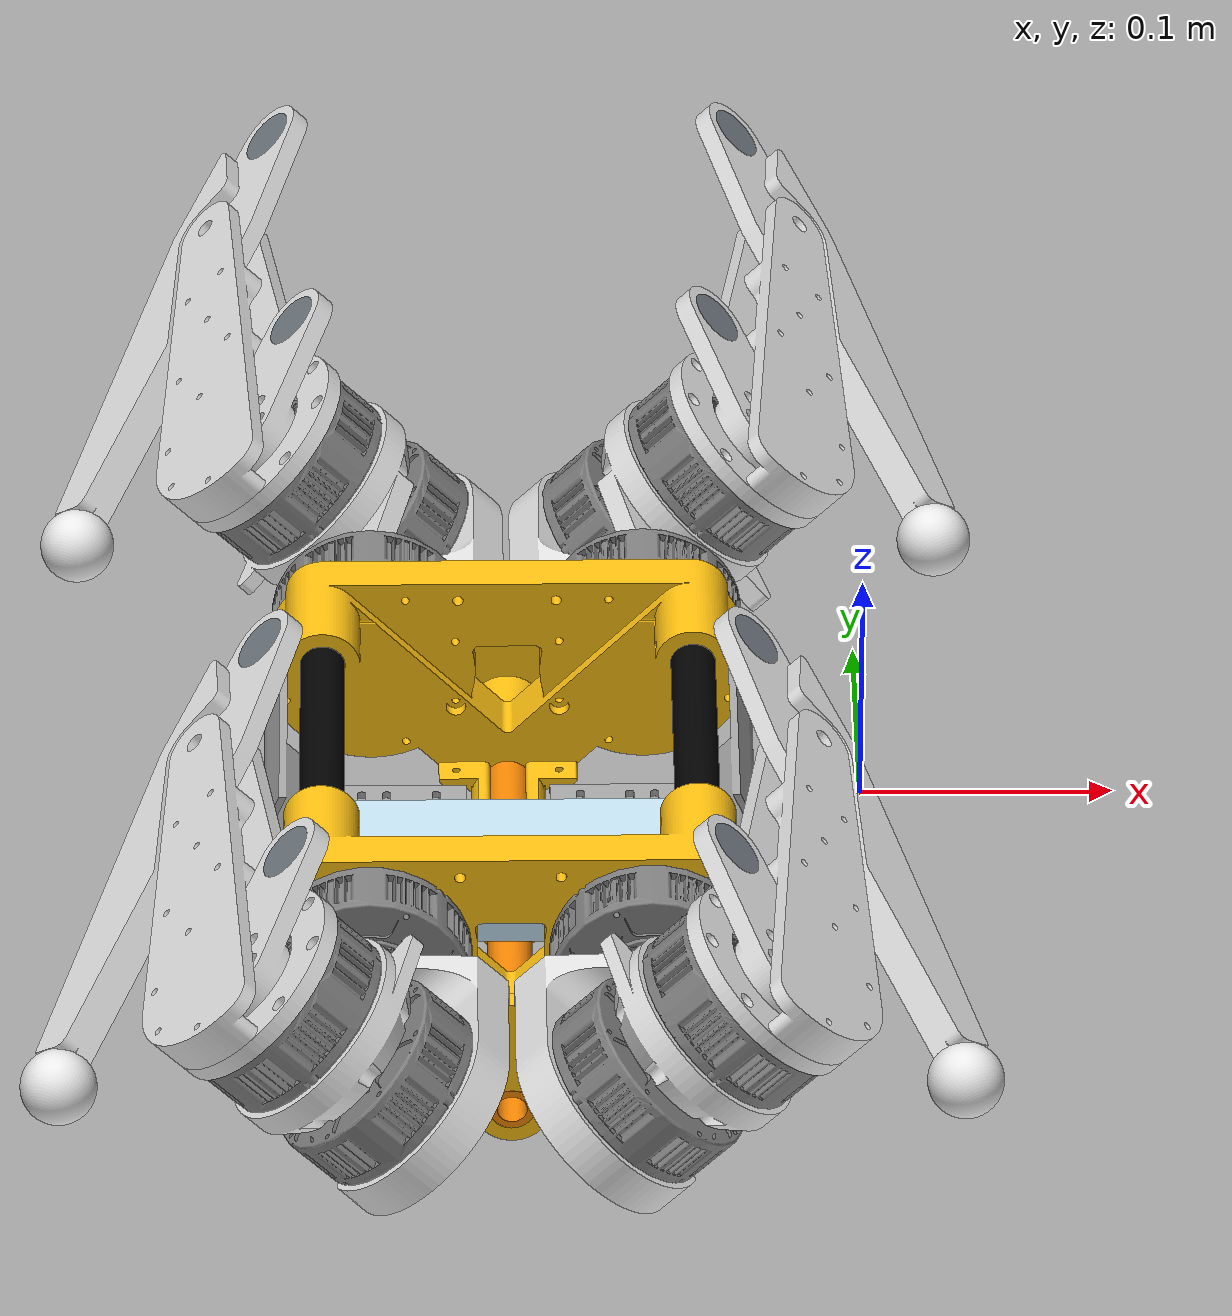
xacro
<?xml version="1.0" ?>
<robot name="quadro" xmlns:xacro="http://www.ros.org/wiki/xacro">
<xacro:arg name="sim_mode" default="false"/>

<xacro:include filename="$(find quadro)/description/materials.xacro" />
<xacro:if value="$(arg sim_mode)">
  <xacro:include filename="$(find quadro)/description/robot.gazebo" />
</xacro:if>

<xacro:unless value="$(arg sim_mode)">
  <xacro:include filename="$(find quadro)/description/ros2_control.xacro" />
</xacro:unless>

  <link name="back_plate">
    <inertial>
      <origin xyz="-0.139034 0.00733582 -0.013731" rpy="0 0 0"/>
      <mass value="2.59053"/>
      <inertia ixx="0.0255846" ixy="-4.15339e-05" ixz="-1.35405e-12" iyy="0.00872593" iyz="-0.000207516" izz="0.0313278"/>
    </inertial>
    <!-- Part back_stop -->
    <visual>
      <origin xyz="-0.139034 -0.0331652 -0.058441" rpy="0 -0 0"/>
      <geometry>
        <mesh filename="file://$(find quadro)/description/assets/back_stop.stl"/>
      </geometry>
      <material name="back_stop_material">
        <color rgba="1 0.756863 0.054902 1"/>
      </material>
    </visual>
    <collision>
      <origin xyz="-0.139034 -0.0331652 -0.058441" rpy="0 -0 0"/>
      <geometry>
        <mesh filename="file://$(find quadro)/description/assets/back_stop.stl"/>
      </geometry>
    </collision>
    <!-- Part side_pipe -->
    <visual>
      <origin xyz="-0.286981 0.105935 -0.058441" rpy="0 -0 0"/>
      <geometry>
        <mesh filename="file://$(find quadro)/description/assets/side_pipe.stl"/>
      </geometry>
      <material name="side_pipe_material">
        <color rgba="0 0 0 1"/>
      </material>
    </visual>
    <collision>
      <origin xyz="-0.286981 0.105935 -0.058441" rpy="0 -0 0"/>
      <geometry>
        <mesh filename="file://$(find quadro)/description/assets/side_pipe.stl"/>
      </geometry>
    </collision>
    <!-- Part side_cover -->
    <visual>
      <origin xyz="-0.139034 -0.0810652 -0.058441" rpy="2.4928e-28 -8.23912e-18 -3.14159"/>
      <geometry>
        <mesh filename="file://$(find quadro)/description/assets/side_cover.stl"/>
      </geometry>
      <material name="side_cover_material">
        <color rgba="0.647059 0.647059 0.647059 1"/>
      </material>
    </visual>
    <collision>
      <origin xyz="-0.139034 -0.0810652 -0.058441" rpy="2.4928e-28 -8.23912e-18 -3.14159"/>
      <geometry>
        <mesh filename="file://$(find quadro)/description/assets/side_cover.stl"/>
      </geometry>
    </collision>
    <!-- Part back_plate -->
    <visual>
      <origin xyz="-0.139034 0.105935 -0.058441" rpy="-3.9443e-31 6.56859e-46 -1.79651e-46"/>
      <geometry>
        <mesh filename="file://$(find quadro)/description/assets/back_plate.stl"/>
      </geometry>
      <material name="back_plate_material">
        <color rgba="1 0.756863 0.054902 1"/>
      </material>
    </visual>
    <collision>
      <origin xyz="-0.139034 0.105935 -0.058441" rpy="-3.9443e-31 6.56859e-46 -1.79651e-46"/>
      <geometry>
        <mesh filename="file://$(find quadro)/description/assets/back_plate.stl"/>
      </geometry>
    </collision>
    <!-- Part battery -->
    <visual>
      <origin xyz="-0.0725337 -0.0315652 -0.029441" rpy="0 -6.12323e-17 1.5708"/>
      <geometry>
        <mesh filename="file://$(find quadro)/description/assets/battery.stl"/>
      </geometry>
      <material name="battery_material">
        <color rgba="0.768627 0.886275 0.952941 1"/>
      </material>
    </visual>
    <collision>
      <origin xyz="-0.0725337 -0.0315652 -0.029441" rpy="0 -6.12323e-17 1.5708"/>
      <geometry>
        <mesh filename="file://$(find quadro)/description/assets/battery.stl"/>
      </geometry>
    </collision>
    <!-- Part motor -->
    <visual>
      <origin xyz="-0.194034 -0.0920652 -0.00844105" rpy="3.14159 5.95406e-36 -1.5708"/>
      <geometry>
        <mesh filename="file://$(find quadro)/description/assets/motor.stl"/>
      </geometry>
      <material name="motor_material">
        <color rgba="0.498039 0.498039 0.498039 1"/>
      </material>
    </visual>
    <collision>
      <origin xyz="-0.194034 -0.0920652 -0.00844105" rpy="3.14159 5.95406e-36 -1.5708"/>
      <geometry>
        <mesh filename="file://$(find quadro)/description/assets/motor.stl"/>
      </geometry>
    </collision>
    <!-- Part side_cover_2 -->
    <visual>
      <origin xyz="-0.139034 0.105935 -0.058441" rpy="0 -8.23912e-18 2.00179e-32"/>
      <geometry>
        <mesh filename="file://$(find quadro)/description/assets/side_cover.stl"/>
      </geometry>
      <material name="side_cover_2_material">
        <color rgba="0.647059 0.647059 0.647059 1"/>
      </material>
    </visual>
    <collision>
      <origin xyz="-0.139034 0.105935 -0.058441" rpy="0 -8.23912e-18 2.00179e-32"/>
      <geometry>
        <mesh filename="file://$(find quadro)/description/assets/side_cover.stl"/>
      </geometry>
    </collision>
    <!-- Part motor_2 -->
    <visual>
      <origin xyz="-0.194034 0.116935 -0.00844105" rpy="-3.14159 7.88861e-31 1.5708"/>
      <geometry>
        <mesh filename="file://$(find quadro)/description/assets/motor.stl"/>
      </geometry>
      <material name="motor_2_material">
        <color rgba="0.498039 0.498039 0.498039 1"/>
      </material>
    </visual>
    <collision>
      <origin xyz="-0.194034 0.116935 -0.00844105" rpy="-3.14159 7.88861e-31 1.5708"/>
      <geometry>
        <mesh filename="file://$(find quadro)/description/assets/motor.stl"/>
      </geometry>
    </collision>
    <!-- Part motor_3 -->
    <visual>
      <origin xyz="-0.0840337 -0.0920652 -0.00844105" rpy="3.14159 5.95406e-36 -1.5708"/>
      <geometry>
        <mesh filename="file://$(find quadro)/description/assets/motor.stl"/>
      </geometry>
      <material name="motor_3_material">
        <color rgba="0.498039 0.498039 0.498039 1"/>
      </material>
    </visual>
    <collision>
      <origin xyz="-0.0840337 -0.0920652 -0.00844105" rpy="3.14159 5.95406e-36 -1.5708"/>
      <geometry>
        <mesh filename="file://$(find quadro)/description/assets/motor.stl"/>
      </geometry>
    </collision>
    <!-- Part bot_pipe_half -->
    <visual>
      <origin xyz="-0.139034 0.439935 -0.058441" rpy="3.14159 -0 0"/>
      <geometry>
        <mesh filename="file://$(find quadro)/description/assets/bot_pipe_half.stl"/>
      </geometry>
      <material name="bot_pipe_half_material">
        <color rgba="0.972549 0.529412 0.00392157 1"/>
      </material>
    </visual>
    <collision>
      <origin xyz="-0.139034 0.439935 -0.058441" rpy="3.14159 -0 0"/>
      <geometry>
        <mesh filename="file://$(find quadro)/description/assets/bot_pipe_half.stl"/>
      </geometry>
    </collision>
    <!-- Part side_pipe_2 -->
    <visual>
      <origin xyz="-0.139034 -0.0810652 0.095559" rpy="3.14159 -0 0"/>
      <geometry>
        <mesh filename="file://$(find quadro)/description/assets/side_pipe.stl"/>
      </geometry>
      <material name="side_pipe_2_material">
        <color rgba="0 0 0 1"/>
      </material>
    </visual>
    <collision>
      <origin xyz="-0.139034 -0.0810652 0.095559" rpy="3.14159 -0 0"/>
      <geometry>
        <mesh filename="file://$(find quadro)/description/assets/side_pipe.stl"/>
      </geometry>
    </collision>
    <!-- Part motor_4 -->
    <visual>
      <origin xyz="-0.0840337 0.116935 -0.00844105" rpy="-3.14159 7.88861e-31 1.5708"/>
      <geometry>
        <mesh filename="file://$(find quadro)/description/assets/motor.stl"/>
      </geometry>
      <material name="motor_4_material">
        <color rgba="0.498039 0.498039 0.498039 1"/>
      </material>
    </visual>
    <collision>
      <origin xyz="-0.0840337 0.116935 -0.00844105" rpy="-3.14159 7.88861e-31 1.5708"/>
      <geometry>
        <mesh filename="file://$(find quadro)/description/assets/motor.stl"/>
      </geometry>
    </collision>
    <!-- Part back_stop_2 -->
    <visual>
      <origin xyz="-0.139034 0.0580348 -0.058441" rpy="0 -0 -3.14159"/>
      <geometry>
        <mesh filename="file://$(find quadro)/description/assets/back_stop.stl"/>
      </geometry>
      <material name="back_stop_2_material">
        <color rgba="1 0.756863 0.054902 1"/>
      </material>
    </visual>
    <collision>
      <origin xyz="-0.139034 0.0580348 -0.058441" rpy="0 -0 -3.14159"/>
      <geometry>
        <mesh filename="file://$(find quadro)/description/assets/back_stop.stl"/>
      </geometry>
    </collision>
    <!-- Part back_plate_2 -->
    <visual>
      <origin xyz="-0.139034 -0.0810652 -0.058441" rpy="0 -0 3.14159"/>
      <geometry>
        <mesh filename="file://$(find quadro)/description/assets/back_plate.stl"/>
      </geometry>
      <material name="back_plate_2_material">
        <color rgba="1 0.756863 0.054902 1"/>
      </material>
    </visual>
    <collision>
      <origin xyz="-0.139034 -0.0810652 -0.058441" rpy="0 -0 3.14159"/>
      <geometry>
        <mesh filename="file://$(find quadro)/description/assets/back_plate.stl"/>
      </geometry>
    </collision>
    <!-- Part bot_pipe_half_2 -->
    <visual>
      <origin xyz="-0.139034 -0.415065 -0.058441" rpy="0 -0 0"/>
      <geometry>
        <mesh filename="file://$(find quadro)/description/assets/bot_pipe_half.stl"/>
      </geometry>
      <material name="bot_pipe_half_2_material">
        <color rgba="0.972549 0.529412 0.00392157 1"/>
      </material>
    </visual>
    <collision>
      <origin xyz="-0.139034 -0.415065 -0.058441" rpy="0 -0 0"/>
      <geometry>
        <mesh filename="file://$(find quadro)/description/assets/bot_pipe_half.stl"/>
      </geometry>
    </collision>
    <!-- Part mid_clamp -->
    <visual>
      <origin xyz="-0.139034 0.245535 -0.058441" rpy="0 -0 0"/>
      <geometry>
        <mesh filename="file://$(find quadro)/description/assets/mid_clamp.stl"/>
      </geometry>
      <material name="mid_clamp_material">
        <color rgba="1 0.756863 0.054902 1"/>
      </material>
    </visual>
    <collision>
      <origin xyz="-0.139034 0.245535 -0.058441" rpy="0 -0 0"/>
      <geometry>
        <mesh filename="file://$(find quadro)/description/assets/mid_clamp.stl"/>
      </geometry>
    </collision>
    <!-- Part battery_2 -->
    <visual>
      <origin xyz="-0.205534 -0.0315652 -0.029441" rpy="3.14159 -0 1.5708"/>
      <geometry>
        <mesh filename="file://$(find quadro)/description/assets/battery.stl"/>
      </geometry>
      <material name="battery_2_material">
        <color rgba="0.768627 0.886275 0.952941 1"/>
      </material>
    </visual>
    <collision>
      <origin xyz="-0.205534 -0.0315652 -0.029441" rpy="3.14159 -0 1.5708"/>
      <geometry>
        <mesh filename="file://$(find quadro)/description/assets/battery.stl"/>
      </geometry>
    </collision>
  </link>
  <!-- Link shaft -->
  <link name="shaft">
    <inertial>
      <origin xyz="-0.00474046 0.00407901 -0.0612986" rpy="0 0 0"/>
      <mass value="0.452938"/>
      <inertia ixx="0.000550761" ixy="-6.00381e-05" ixz="-1.13918e-05" iyy="0.00055728" iyz="1.18589e-05" izz="0.000239291"/>
    </inertial>
    <!-- Part lin_1_support_br -->
    <visual>
      <origin xyz="-0.019799 0.019799 -0.0735" rpy="0.785398 -1.5708 0"/>
      <geometry>
        <mesh filename="file://$(find quadro)/description/assets/lin_1_support_br.stl"/>
      </geometry>
      <material name="lin_1_support_br_material">
        <color rgba="0.901961 0.901961 0.901961 1"/>
      </material>
    </visual>
    <collision>
      <origin xyz="-0.019799 0.019799 -0.0735" rpy="0.785398 -1.5708 0"/>
      <geometry>
        <mesh filename="file://$(find quadro)/description/assets/lin_1_support_br.stl"/>
      </geometry>
    </collision>
    <!-- Part motor_5 -->
    <visual>
      <origin xyz="-0.0120208 0.0120208 -0.0735" rpy="-1.5708 4.94218e-17 -0.785398"/>
      <geometry>
        <mesh filename="file://$(find quadro)/description/assets/motor.stl"/>
      </geometry>
      <material name="motor_5_material">
        <color rgba="0.498039 0.498039 0.498039 1"/>
      </material>
    </visual>
    <collision>
      <origin xyz="-0.0120208 0.0120208 -0.0735" rpy="-1.5708 4.94218e-17 -0.785398"/>
      <geometry>
        <mesh filename="file://$(find quadro)/description/assets/motor.stl"/>
      </geometry>
    </collision>
    <!-- Part shaft -->
    <visual>
      <origin xyz="0 0 0.01" rpy="1.5708 1.5708 0"/>
      <geometry>
        <mesh filename="file://$(find quadro)/description/assets/shaft.stl"/>
      </geometry>
      <material name="shaft_material">
        <color rgba="0.498039 0.498039 0.498039 1"/>
      </material>
    </visual>
    <collision>
      <origin xyz="0 0 0.01" rpy="1.5708 1.5708 0"/>
      <geometry>
        <mesh filename="file://$(find quadro)/description/assets/shaft.stl"/>
      </geometry>
    </collision>
  </link>
  <!-- Link shaft_2 -->
  <link name="shaft_2">
    <inertial>
      <origin xyz="0.00931177 -0.00187407 -0.0491985" rpy="0 0 0"/>
      <mass value="0.524841"/>
      <inertia ixx="0.000439148" ixy="6.14395e-05" ixz="0.000140002" iyy="0.000912333" iyz="-3.78102e-05" izz="0.000883052"/>
    </inertial>
    <!-- Part bot_r -->
    <visual>
      <origin xyz="5.55112e-16 3.60822e-16 0.1275" rpy="-1.5708 1.35308e-15 -0.0872665"/>
      <geometry>
        <mesh filename="file://$(find quadro)/description/assets/bot_r.stl"/>
      </geometry>
      <material name="bot_r_material">
        <color rgba="0.901961 0.901961 0.901961 1"/>
      </material>
    </visual>
    <collision>
      <origin xyz="5.55112e-16 3.60822e-16 0.1275" rpy="-1.5708 1.35308e-15 -0.0872665"/>
      <geometry>
        <mesh filename="file://$(find quadro)/description/assets/bot_r.stl"/>
      </geometry>
    </collision>
    <!-- Part top_r -->
    <visual>
      <origin xyz="4.71845e-16 3.88578e-16 0.1275" rpy="-1.5708 1.20043e-15 -0.0872665"/>
      <geometry>
        <mesh filename="file://$(find quadro)/description/assets/top_r.stl"/>
      </geometry>
      <material name="top_r_material">
        <color rgba="0.901961 0.901961 0.901961 1"/>
      </material>
    </visual>
    <collision>
      <origin xyz="4.71845e-16 3.88578e-16 0.1275" rpy="-1.5708 1.20043e-15 -0.0872665"/>
      <geometry>
        <mesh filename="file://$(find quadro)/description/assets/top_r.stl"/>
      </geometry>
    </collision>
    <!-- Part shaft_2 -->
    <visual>
      <origin xyz="2.77556e-17 2.77556e-17 0.01" rpy="1.5708 1.5708 0"/>
      <geometry>
        <mesh filename="file://$(find quadro)/description/assets/shaft.stl"/>
      </geometry>
      <material name="shaft_2_material">
        <color rgba="0.498039 0.498039 0.498039 1"/>
      </material>
    </visual>
    <collision>
      <origin xyz="2.77556e-17 2.77556e-17 0.01" rpy="1.5708 1.5708 0"/>
      <geometry>
        <mesh filename="file://$(find quadro)/description/assets/shaft.stl"/>
      </geometry>
    </collision>
    <!-- Part lin_2_br -->
    <visual>
      <origin xyz="8.32667e-17 0 0.0305" rpy="-1.5708 -2.33147e-15 0.698132"/>
      <geometry>
        <mesh filename="file://$(find quadro)/description/assets/lin_2_br.stl"/>
      </geometry>
      <material name="lin_2_br_material">
        <color rgba="0.901961 0.901961 0.901961 1"/>
      </material>
    </visual>
    <collision>
      <origin xyz="8.32667e-17 0 0.0305" rpy="-1.5708 -2.33147e-15 0.698132"/>
      <geometry>
        <mesh filename="file://$(find quadro)/description/assets/lin_2_br.stl"/>
      </geometry>
    </collision>
    <!-- Part motor_6 -->
    <visual>
      <origin xyz="2.77556e-17 -2.77556e-17 -0.0395" rpy="0.872665 1.5708 0"/>
      <geometry>
        <mesh filename="file://$(find quadro)/description/assets/motor.stl"/>
      </geometry>
      <material name="motor_6_material">
        <color rgba="0.498039 0.498039 0.498039 1"/>
      </material>
    </visual>
    <collision>
      <origin xyz="2.77556e-17 -2.77556e-17 -0.0395" rpy="0.872665 1.5708 0"/>
      <geometry>
        <mesh filename="file://$(find quadro)/description/assets/motor.stl"/>
      </geometry>
    </collision>
  </link>
  <!-- Link shaft_3 -->
  <link name="shaft_3">
    <inertial>
      <origin xyz="0.00823991 0.00823991 -0.0152617" rpy="0 0 0"/>
      <mass value="0.0992632"/>
      <inertia ixx="3.95043e-05" ixy="-2.3154e-05" ixz="1.04189e-05" iyy="3.95043e-05" iyz="1.04189e-05" izz="6.07656e-05"/>
    </inertial>
    <!-- Part bearing -->
    <visual>
      <origin xyz="0.0388909 0.0388909 -0.032" rpy="-1.5708 5.10703e-15 -0.785398"/>
      <geometry>
        <mesh filename="file://$(find quadro)/description/assets/bearing.stl"/>
      </geometry>
      <material name="bearing_material">
        <color rgba="0.439216 0.47451 0.501961 1"/>
      </material>
    </visual>
    <collision>
      <origin xyz="0.0388909 0.0388909 -0.032" rpy="-1.5708 5.10703e-15 -0.785398"/>
      <geometry>
        <mesh filename="file://$(find quadro)/description/assets/bearing.stl"/>
      </geometry>
    </collision>
    <!-- Part shaft_3 -->
    <visual>
      <origin xyz="0 1.38778e-17 0.01" rpy="1.5708 1.5708 0"/>
      <geometry>
        <mesh filename="file://$(find quadro)/description/assets/shaft.stl"/>
      </geometry>
      <material name="shaft_3_material">
        <color rgba="0.498039 0.498039 0.498039 1"/>
      </material>
    </visual>
    <collision>
      <origin xyz="0 1.38778e-17 0.01" rpy="1.5708 1.5708 0"/>
      <geometry>
        <mesh filename="file://$(find quadro)/description/assets/shaft.stl"/>
      </geometry>
    </collision>
    <!-- Part mid_r -->
    <visual>
      <origin xyz="-1.66533e-16 -4.16334e-17 0.186" rpy="-1.5708 4.996e-15 -0.785398"/>
      <geometry>
        <mesh filename="file://$(find quadro)/description/assets/mid_r.stl"/>
      </geometry>
      <material name="mid_r_material">
        <color rgba="0.901961 0.901961 0.901961 1"/>
      </material>
    </visual>
    <collision>
      <origin xyz="-1.66533e-16 -4.16334e-17 0.186" rpy="-1.5708 4.996e-15 -0.785398"/>
      <geometry>
        <mesh filename="file://$(find quadro)/description/assets/mid_r.stl"/>
      </geometry>
    </collision>
  </link>
  <!-- Joint from shaft_2 to shaft_3 -->
  <joint name="br_m3_s3" type="revolute">
    <origin xyz="2.77556e-17 -2.77556e-17 -0.0495" rpy="-6.10623e-16 8.46545e-16 -0.226893"/>
    <parent link="shaft_2"/>
    <child link="shaft_3"/>
    <axis xyz="0 0 1"/>
    <limit effort="10" velocity="12" lower="-3.14" upper="3.14"/>
    <joint_properties friction="0.5"/>
    <mimic joint="br_l4_l3" multiplier="1.0"/>
  </joint>
  <!-- Link l4_r -->
  <link name="l4_r">
    <inertial>
      <origin xyz="0.000903864 -0.036899 -0.00535524" rpy="0 0 0"/>
      <mass value="0.0940232"/>
      <inertia ixx="0.000523053" ixy="-1.96406e-06" ixz="4.23983e-07" iyy="8.81625e-06" iyz="-3.90493e-06" izz="0.000528442"/>
    </inertial>
    <!-- Part l4_r -->
    <visual>
      <origin xyz="-0.16 0.002 0.192" rpy="-1.5708 -0 -2.77556e-17"/>
      <geometry>
        <mesh filename="file://$(find quadro)/description/assets/l4_r.stl"/>
      </geometry>
      <material name="l4_r_material">
        <color rgba="0.901961 0.901961 0.901961 1"/>
      </material>
    </visual>
    <collision>
      <origin xyz="-0.16 0.002 0.192" rpy="-1.5708 -0 -2.77556e-17"/>
      <geometry>
        <mesh filename="file://$(find quadro)/description/assets/l4_r.stl"/>
      </geometry>
    </collision>
    <!-- Part feet -->
    <visual>
      <origin xyz="0.200014 0.04 -0.039" rpy="-1.5708 -0 -2.44249e-15"/>
      <geometry>
        <mesh filename="file://$(find quadro)/description/assets/feet.stl"/>
      </geometry>
      <material name="feet_material">
        <color rgba="0.917647 0.917647 0.917647 1"/>
      </material>
    </visual>
    <collision>
      <origin xyz="0.200014 0.04 -0.039" rpy="-1.5708 -0 -2.44249e-15"/>
      <geometry>
        <mesh filename="file://$(find quadro)/description/assets/feet.stl"/>
      </geometry>
    </collision>
    <!-- Part bearing_2 -->
    <visual>
      <origin xyz="5.55112e-17 0.055 -0.008" rpy="-1.5708 -1.11022e-16 2.77556e-17"/>
      <geometry>
        <mesh filename="file://$(find quadro)/description/assets/bearing.stl"/>
      </geometry>
      <material name="bearing_2_material">
        <color rgba="0.439216 0.47451 0.501961 1"/>
      </material>
    </visual>
    <collision>
      <origin xyz="5.55112e-17 0.055 -0.008" rpy="-1.5708 -1.11022e-16 2.77556e-17"/>
      <geometry>
        <mesh filename="file://$(find quadro)/description/assets/bearing.stl"/>
      </geometry>
    </collision>
    <!-- Part bearing_3 -->
    <visual>
      <origin xyz="1.11022e-16 2.77556e-17 -0.008" rpy="-1.5708 -5.55112e-17 0"/>
      <geometry>
        <mesh filename="file://$(find quadro)/description/assets/bearing.stl"/>
      </geometry>
      <material name="bearing_3_material">
        <color rgba="0.439216 0.47451 0.501961 1"/>
      </material>
    </visual>
    <collision>
      <origin xyz="1.11022e-16 2.77556e-17 -0.008" rpy="-1.5708 -5.55112e-17 0"/>
      <geometry>
        <mesh filename="file://$(find quadro)/description/assets/bearing.stl"/>
      </geometry>
    </collision>
  </link>
  <!-- Frame br_foot (dummy link + fixed joint) -->
  <link name="br_foot">
    <origin xyz="0 0 0" rpy="0 -0 0"/>
    <inertial>
      <origin xyz="0 0 0" rpy="0 0 0"/>
      <mass value="1e-9"/>
      <inertia ixx="0" ixy="0" ixz="0" iyy="0" iyz="0" izz="0"/>
    </inertial>
  </link>
  <joint name="br_foot_frame" type="fixed">
    <origin xyz="1.66533e-16 -0.165803 -0.004" rpy="-1.5708 -0 -2.44249e-15"/>
    <parent link="l4_r"/>
    <child link="br_foot"/>
    <axis xyz="0 0 0"/>
  </joint>
  <!-- Joint from shaft_2 to l4_r -->
  <joint name="br_l4_l3" type="revolute">
    <origin xyz="0.159217 -0.0159373 -0.0735" rpy="-1.72085e-15 4.38538e-15 -1.01229"/>
    <parent link="shaft_2"/>
    <child link="l4_r"/>
    <axis xyz="0 0 1"/>
    <limit effort="10" velocity="12" lower="-3.14" upper="3.14"/>
    <joint_properties friction="0.5"/>
  </joint>
  <!-- Joint from shaft to shaft_2 -->
  <joint name="br_m2_s2" type="revolute">
    <origin xyz="-0.00494975 0.00494975 -0.0735" rpy="-2.35619 1.5708 0"/>
    <parent link="shaft"/>
    <child link="shaft_2"/>
    <axis xyz="0 0 1"/>
    <limit effort="10" velocity="12" lower="-3.14" upper="3.14"/>
    <joint_properties friction="0.5"/>
  </joint>
  <!-- Joint from back_plate to shaft -->
  <joint name="br_m1_s1" type="revolute">
    <origin xyz="-0.194034 0.126935 -0.00844105" rpy="-1.5708 -8.11125e-15 3.14159"/>
    <parent link="back_plate"/>
    <child link="shaft"/>
    <axis xyz="0 0 1"/>
    <limit effort="10" velocity="12" lower="-3.14" upper="3.14"/>
    <joint_properties friction="0.5"/>
  </joint>
  <!-- Link shaft_4 -->
  <link name="shaft_4">
    <inertial>
      <origin xyz="0.00473706 0.0040862 -0.0608763" rpy="0 0 0"/>
      <mass value="0.453012"/>
      <inertia ixx="0.000546146" ixy="6.01031e-05" ixz="1.17627e-05" iyy="0.000552555" iyz="1.15907e-05" izz="0.000239462"/>
    </inertial>
    <!-- Part shaft_4 -->
    <visual>
      <origin xyz="0 1.73472e-18 0.01" rpy="1.5708 1.5708 0"/>
      <geometry>
        <mesh filename="file://$(find quadro)/description/assets/shaft.stl"/>
      </geometry>
      <material name="shaft_4_material">
        <color rgba="0.498039 0.498039 0.498039 1"/>
      </material>
    </visual>
    <collision>
      <origin xyz="0 1.73472e-18 0.01" rpy="1.5708 1.5708 0"/>
      <geometry>
        <mesh filename="file://$(find quadro)/description/assets/shaft.stl"/>
      </geometry>
    </collision>
    <!-- Part motor_7 -->
    <visual>
      <origin xyz="0.0120208 0.0120208 -0.0735" rpy="1.5708 -1.61276e-15 -2.35619"/>
      <geometry>
        <mesh filename="file://$(find quadro)/description/assets/motor.stl"/>
      </geometry>
      <material name="motor_7_material">
        <color rgba="0.498039 0.498039 0.498039 1"/>
      </material>
    </visual>
    <collision>
      <origin xyz="0.0120208 0.0120208 -0.0735" rpy="1.5708 -1.61276e-15 -2.35619"/>
      <geometry>
        <mesh filename="file://$(find quadro)/description/assets/motor.stl"/>
      </geometry>
    </collision>
    <!-- Part lin_1_support_bl -->
    <visual>
      <origin xyz="0.0685894 0.0685894 -0.0735" rpy="2.35619 -1.5708 0"/>
      <geometry>
        <mesh filename="file://$(find quadro)/description/assets/lin_1_support_bl.stl"/>
      </geometry>
      <material name="lin_1_support_bl_material">
        <color rgba="0.901961 0.901961 0.901961 1"/>
      </material>
    </visual>
    <collision>
      <origin xyz="0.0685894 0.0685894 -0.0735" rpy="2.35619 -1.5708 0"/>
      <geometry>
        <mesh filename="file://$(find quadro)/description/assets/lin_1_support_bl.stl"/>
      </geometry>
    </collision>
  </link>
  <!-- Link shaft_5 -->
  <link name="shaft_5">
    <inertial>
      <origin xyz="0.00679431 0.00633758 -0.0491985" rpy="0 0 0"/>
      <mass value="0.524841"/>
      <inertia ixx="0.000610231" ixy="-0.000236595" ixz="0.000101861" iyy="0.000743295" iyz="0.00010283" izz="0.000885096"/>
    </inertial>
    <!-- Part lin_2_bl -->
    <visual>
      <origin xyz="0 -6.93889e-18 -0.0195" rpy="1.5708 2.22045e-16 -0.174533"/>
      <geometry>
        <mesh filename="file://$(find quadro)/description/assets/lin_2_bl.stl"/>
      </geometry>
      <material name="lin_2_bl_material">
        <color rgba="0.901961 0.901961 0.901961 1"/>
      </material>
    </visual>
    <collision>
      <origin xyz="0 -6.93889e-18 -0.0195" rpy="1.5708 2.22045e-16 -0.174533"/>
      <geometry>
        <mesh filename="file://$(find quadro)/description/assets/lin_2_bl.stl"/>
      </geometry>
    </collision>
    <!-- Part top_l -->
    <visual>
      <origin xyz="5.27356e-16 -9.71445e-17 -0.0725" rpy="1.5708 -1.0443e-14 0.610865"/>
      <geometry>
        <mesh filename="file://$(find quadro)/description/assets/top_l.stl"/>
      </geometry>
      <material name="top_l_material">
        <color rgba="0.901961 0.901961 0.901961 1"/>
      </material>
    </visual>
    <collision>
      <origin xyz="5.27356e-16 -9.71445e-17 -0.0725" rpy="1.5708 -1.0443e-14 0.610865"/>
      <geometry>
        <mesh filename="file://$(find quadro)/description/assets/top_l.stl"/>
      </geometry>
    </collision>
    <!-- Part motor_8 -->
    <visual>
      <origin xyz="5.55112e-17 -6.93889e-18 -0.0395" rpy="-1.39626 1.5708 0"/>
      <geometry>
        <mesh filename="file://$(find quadro)/description/assets/motor.stl"/>
      </geometry>
      <material name="motor_8_material">
        <color rgba="0.498039 0.498039 0.498039 1"/>
      </material>
    </visual>
    <collision>
      <origin xyz="5.55112e-17 -6.93889e-18 -0.0395" rpy="-1.39626 1.5708 0"/>
      <geometry>
        <mesh filename="file://$(find quadro)/description/assets/motor.stl"/>
      </geometry>
    </collision>
    <!-- Part bot_l -->
    <visual>
      <origin xyz="5.27356e-16 -9.71445e-17 -0.0725" rpy="1.5708 -1.0443e-14 0.610865"/>
      <geometry>
        <mesh filename="file://$(find quadro)/description/assets/bot_l.stl"/>
      </geometry>
      <material name="bot_l_material">
        <color rgba="0.901961 0.901961 0.901961 1"/>
      </material>
    </visual>
    <collision>
      <origin xyz="5.27356e-16 -9.71445e-17 -0.0725" rpy="1.5708 -1.0443e-14 0.610865"/>
      <geometry>
        <mesh filename="file://$(find quadro)/description/assets/bot_l.stl"/>
      </geometry>
    </collision>
    <!-- Part shaft_5 -->
    <visual>
      <origin xyz="2.77556e-17 -6.93889e-18 0.01" rpy="1.5708 1.5708 0"/>
      <geometry>
        <mesh filename="file://$(find quadro)/description/assets/shaft.stl"/>
      </geometry>
      <material name="shaft_5_material">
        <color rgba="0.498039 0.498039 0.498039 1"/>
      </material>
    </visual>
    <collision>
      <origin xyz="2.77556e-17 -6.93889e-18 0.01" rpy="1.5708 1.5708 0"/>
      <geometry>
        <mesh filename="file://$(find quadro)/description/assets/shaft.stl"/>
      </geometry>
    </collision>
  </link>
  <!-- Link shaft_6 -->
  <link name="shaft_6">
    <inertial>
      <origin xyz="-0.00823991 0.00823991 -0.0152617" rpy="0 0 0"/>
      <mass value="0.0992632"/>
      <inertia ixx="3.95043e-05" ixy="2.3154e-05" ixz="-1.04189e-05" iyy="3.95043e-05" iyz="1.04189e-05" izz="6.07656e-05"/>
    </inertial>
    <!-- Part bearing_4 -->
    <visual>
      <origin xyz="-0.0388909 0.0388909 -0.032" rpy="-1.5708 -2.38143e-14 -2.35619"/>
      <geometry>
        <mesh filename="file://$(find quadro)/description/assets/bearing.stl"/>
      </geometry>
      <material name="bearing_4_material">
        <color rgba="0.439216 0.47451 0.501961 1"/>
      </material>
    </visual>
    <collision>
      <origin xyz="-0.0388909 0.0388909 -0.032" rpy="-1.5708 -2.38143e-14 -2.35619"/>
      <geometry>
        <mesh filename="file://$(find quadro)/description/assets/bearing.stl"/>
      </geometry>
    </collision>
    <!-- Part shaft_6 -->
    <visual>
      <origin xyz="2.77556e-17 0 0.01" rpy="1.5708 1.5708 0"/>
      <geometry>
        <mesh filename="file://$(find quadro)/description/assets/shaft.stl"/>
      </geometry>
      <material name="shaft_6_material">
        <color rgba="0.498039 0.498039 0.498039 1"/>
      </material>
    </visual>
    <collision>
      <origin xyz="2.77556e-17 0 0.01" rpy="1.5708 1.5708 0"/>
      <geometry>
        <mesh filename="file://$(find quadro)/description/assets/shaft.stl"/>
      </geometry>
    </collision>
    <!-- Part mid_l -->
    <visual>
      <origin xyz="0 1.38778e-17 -0.014" rpy="1.5708 3.33067e-16 -2.35619"/>
      <geometry>
        <mesh filename="file://$(find quadro)/description/assets/mid_l.stl"/>
      </geometry>
      <material name="mid_l_material">
        <color rgba="0.901961 0.901961 0.901961 1"/>
      </material>
    </visual>
    <collision>
      <origin xyz="0 1.38778e-17 -0.014" rpy="1.5708 3.33067e-16 -2.35619"/>
      <geometry>
        <mesh filename="file://$(find quadro)/description/assets/mid_l.stl"/>
      </geometry>
    </collision>
  </link>
  <!-- Joint from shaft_5 to shaft_6 -->
  <joint name="bl_m3_s3" type="revolute">
    <origin xyz="7.21645e-16 -1.52656e-16 -0.0495" rpy="1.21014e-14 5.23193e-15 -2.3911"/>
    <parent link="shaft_5"/>
    <child link="shaft_6"/>
    <axis xyz="0 0 1"/>
    <limit effort="10" velocity="12" lower="-3.14" upper="3.14"/>
    <joint_properties friction="0.5"/>
    <mimic joint="bl_l4_l3" multiplier="1.0"/>
  </joint>
  <!-- Link l4_l -->
  <link name="l4_l">
    <inertial>
      <origin xyz="0.000904018 0.036899 -0.00535524" rpy="0 0 0"/>
      <mass value="0.0940232"/>
      <inertia ixx="0.000523053" ixy="1.96238e-06" ixz="4.23975e-07" iyy="8.81622e-06" iyz="3.90493e-06" izz="0.000528442"/>
    </inertial>
    <!-- Part bearing_5 -->
    <visual>
      <origin xyz="0 -5.55112e-17 -0.008" rpy="-1.5708 -4.10783e-15 -2.77556e-17"/>
      <geometry>
        <mesh filename="file://$(find quadro)/description/assets/bearing.stl"/>
      </geometry>
      <material name="bearing_5_material">
        <color rgba="0.439216 0.47451 0.501961 1"/>
      </material>
    </visual>
    <collision>
      <origin xyz="0 -5.55112e-17 -0.008" rpy="-1.5708 -4.10783e-15 -2.77556e-17"/>
      <geometry>
        <mesh filename="file://$(find quadro)/description/assets/bearing.stl"/>
      </geometry>
    </collision>
    <!-- Part bearing_6 -->
    <visual>
      <origin xyz="-5.55112e-17 -0.055 -0.008" rpy="-1.5708 -4.10783e-15 -2.77556e-17"/>
      <geometry>
        <mesh filename="file://$(find quadro)/description/assets/bearing.stl"/>
      </geometry>
      <material name="bearing_6_material">
        <color rgba="0.439216 0.47451 0.501961 1"/>
      </material>
    </visual>
    <collision>
      <origin xyz="-5.55112e-17 -0.055 -0.008" rpy="-1.5708 -4.10783e-15 -2.77556e-17"/>
      <geometry>
        <mesh filename="file://$(find quadro)/description/assets/bearing.stl"/>
      </geometry>
    </collision>
    <!-- Part feet_2 -->
    <visual>
      <origin xyz="-0.200014 -0.04 -0.039" rpy="-1.5708 -1.66533e-16 -3.14159"/>
      <geometry>
        <mesh filename="file://$(find quadro)/description/assets/feet.stl"/>
      </geometry>
      <material name="feet_2_material">
        <color rgba="0.917647 0.917647 0.917647 1"/>
      </material>
    </visual>
    <collision>
      <origin xyz="-0.200014 -0.04 -0.039" rpy="-1.5708 -1.66533e-16 -3.14159"/>
      <geometry>
        <mesh filename="file://$(find quadro)/description/assets/feet.stl"/>
      </geometry>
    </collision>
    <!-- Part l4_l -->
    <visual>
      <origin xyz="-0.16 -0.002 -0.008" rpy="1.5708 5.55112e-17 -5.55112e-17"/>
      <geometry>
        <mesh filename="file://$(find quadro)/description/assets/l4_l.stl"/>
      </geometry>
      <material name="l4_l_material">
        <color rgba="0.901961 0.901961 0.901961 1"/>
      </material>
    </visual>
    <collision>
      <origin xyz="-0.16 -0.002 -0.008" rpy="1.5708 5.55112e-17 -5.55112e-17"/>
      <geometry>
        <mesh filename="file://$(find quadro)/description/assets/l4_l.stl"/>
      </geometry>
    </collision>
  </link>
  <!-- Frame bl_foot (dummy link + fixed joint) -->
  <link name="bl_foot">
    <origin xyz="0 0 0" rpy="0 -0 0"/>
    <inertial>
      <origin xyz="0 0 0" rpy="0 0 0"/>
      <mass value="1e-9"/>
      <inertia ixx="0" ixy="0" ixz="0" iyy="0" iyz="0" izz="0"/>
    </inertial>
  </link>
  <joint name="bl_foot_frame" type="fixed">
    <origin xyz="-5.55112e-17 0.165803 -0.004" rpy="-1.5708 -1.66533e-16 -3.14159"/>
    <parent link="l4_l"/>
    <child link="bl_foot"/>
    <axis xyz="0 0 0"/>
  </joint>
  <!-- Joint from shaft_5 to l4_l -->
  <joint name="bl_l4_l3" type="revolute">
    <origin xyz="0.129917 0.0934105 -0.0735" rpy="-1.63758e-14 6.77236e-15 1.53589"/>
    <parent link="shaft_5"/>
    <child link="l4_l"/>
    <axis xyz="0 0 1"/>
    <limit effort="10" velocity="12" lower="-3.14" upper="3.14"/>
    <joint_properties friction="0.5"/>
  </joint>
  <!-- Joint from shaft_4 to shaft_5 -->
  <joint name="bl_m2_s2" type="revolute">
    <origin xyz="0.00494975 0.00494975 -0.0735" rpy="-1.5708 1.0472 -0.785398"/>
    <parent link="shaft_4"/>
    <child link="shaft_5"/>
    <axis xyz="0 0 1"/>
    <limit effort="10" velocity="12" lower="-3.14" upper="3.14"/>
    <joint_properties friction="0.5"/>
  </joint>
  <!-- Joint from back_plate to shaft_4 -->
  <joint name="bl_m1_s1" type="revolute">
    <origin xyz="-0.0840337 0.126935 -0.00844105" rpy="-1.5708 -9.60008e-14 -3.14159"/>
    <parent link="back_plate"/>
    <child link="shaft_4"/>
    <axis xyz="0 0 1"/>
    <limit effort="10" velocity="12" lower="-3.14" upper="3.14"/>
    <joint_properties friction="0.5"/>
  </joint>
  <!-- Link shaft_7 -->
  <link name="shaft_7">
    <inertial>
      <origin xyz="-0.00469968 -0.00412358 -0.0608763" rpy="0 0 0"/>
      <mass value="0.453012"/>
      <inertia ixx="0.000545527" ixy="6.01135e-05" ixz="-1.23936e-05" iyy="0.000553194" iyz="-1.09597e-05" izz="0.000239482"/>
    </inertial>
    <!-- Part lin_1_support_fr -->
    <visual>
      <origin xyz="-0.109319 -0.109319 -0.0735" rpy="2.35619 -1.5708 0"/>
      <geometry>
        <mesh filename="file://$(find quadro)/description/assets/lin_1_support_fr.stl"/>
      </geometry>
      <material name="lin_1_support_fr_material">
        <color rgba="0.901961 0.901961 0.901961 1"/>
      </material>
    </visual>
    <collision>
      <origin xyz="-0.109319 -0.109319 -0.0735" rpy="2.35619 -1.5708 0"/>
      <geometry>
        <mesh filename="file://$(find quadro)/description/assets/lin_1_support_fr.stl"/>
      </geometry>
    </collision>
    <!-- Part motor_9 -->
    <visual>
      <origin xyz="-0.0120208 -0.0120208 -0.0735" rpy="1.5708 9.97297e-17 0.785398"/>
      <geometry>
        <mesh filename="file://$(find quadro)/description/assets/motor.stl"/>
      </geometry>
      <material name="motor_9_material">
        <color rgba="0.498039 0.498039 0.498039 1"/>
      </material>
    </visual>
    <collision>
      <origin xyz="-0.0120208 -0.0120208 -0.0735" rpy="1.5708 9.97297e-17 0.785398"/>
      <geometry>
        <mesh filename="file://$(find quadro)/description/assets/motor.stl"/>
      </geometry>
    </collision>
    <!-- Part shaft_7 -->
    <visual>
      <origin xyz="0 1.73472e-18 0.01" rpy="1.5708 1.5708 0"/>
      <geometry>
        <mesh filename="file://$(find quadro)/description/assets/shaft.stl"/>
      </geometry>
      <material name="shaft_7_material">
        <color rgba="0.498039 0.498039 0.498039 1"/>
      </material>
    </visual>
    <collision>
      <origin xyz="0 1.73472e-18 0.01" rpy="1.5708 1.5708 0"/>
      <geometry>
        <mesh filename="file://$(find quadro)/description/assets/shaft.stl"/>
      </geometry>
    </collision>
  </link>
  <!-- Link shaft_8 -->
  <link name="shaft_8">
    <inertial>
      <origin xyz="0.00960955 -0.00201737 -0.0491732" rpy="0 0 0"/>
      <mass value="0.525416"/>
      <inertia ixx="0.000440202" ixy="6.05777e-05" ixz="0.000136109" iyy="0.000909648" iyz="-3.55951e-05" izz="0.000880794"/>
    </inertial>
    <!-- Part lin_2_fr -->
    <visual>
      <origin xyz="5.55112e-17 -2.77556e-17 0.1305" rpy="-1.5708 -0 0.698132"/>
      <geometry>
        <mesh filename="file://$(find quadro)/description/assets/lin_2_fr.stl"/>
      </geometry>
      <material name="lin_2_fr_material">
        <color rgba="0.901961 0.901961 0.901961 1"/>
      </material>
    </visual>
    <collision>
      <origin xyz="5.55112e-17 -2.77556e-17 0.1305" rpy="-1.5708 -0 0.698132"/>
      <geometry>
        <mesh filename="file://$(find quadro)/description/assets/lin_2_fr.stl"/>
      </geometry>
    </collision>
    <!-- Part motor_10 -->
    <visual>
      <origin xyz="0 -5.55112e-17 -0.0395" rpy="0.872665 1.5708 0"/>
      <geometry>
        <mesh filename="file://$(find quadro)/description/assets/motor.stl"/>
      </geometry>
      <material name="motor_10_material">
        <color rgba="0.498039 0.498039 0.498039 1"/>
      </material>
    </visual>
    <collision>
      <origin xyz="0 -5.55112e-17 -0.0395" rpy="0.872665 1.5708 0"/>
      <geometry>
        <mesh filename="file://$(find quadro)/description/assets/motor.stl"/>
      </geometry>
    </collision>
    <!-- Part top_r_2 -->
    <visual>
      <origin xyz="-1.94289e-16 1.66533e-16 0.1275" rpy="-1.5708 -2.91434e-16 -0.0872665"/>
      <geometry>
        <mesh filename="file://$(find quadro)/description/assets/top_r.stl"/>
      </geometry>
      <material name="top_r_2_material">
        <color rgba="0.901961 0.901961 0.901961 1"/>
      </material>
    </visual>
    <collision>
      <origin xyz="-1.94289e-16 1.66533e-16 0.1275" rpy="-1.5708 -2.91434e-16 -0.0872665"/>
      <geometry>
        <mesh filename="file://$(find quadro)/description/assets/top_r.stl"/>
      </geometry>
    </collision>
    <!-- Part shaft_8 -->
    <visual>
      <origin xyz="0 -2.77556e-17 0.01" rpy="1.5708 1.5708 0"/>
      <geometry>
        <mesh filename="file://$(find quadro)/description/assets/shaft.stl"/>
      </geometry>
      <material name="shaft_8_material">
        <color rgba="0.498039 0.498039 0.498039 1"/>
      </material>
    </visual>
    <collision>
      <origin xyz="0 -2.77556e-17 0.01" rpy="1.5708 1.5708 0"/>
      <geometry>
        <mesh filename="file://$(find quadro)/description/assets/shaft.stl"/>
      </geometry>
    </collision>
    <!-- Part bot_r_2 -->
    <visual>
      <origin xyz="8.32667e-17 1.11022e-16 0.1275" rpy="-1.5708 -9.02056e-17 -0.0872665"/>
      <geometry>
        <mesh filename="file://$(find quadro)/description/assets/bot_r.stl"/>
      </geometry>
      <material name="bot_r_2_material">
        <color rgba="0.901961 0.901961 0.901961 1"/>
      </material>
    </visual>
    <collision>
      <origin xyz="8.32667e-17 1.11022e-16 0.1275" rpy="-1.5708 -9.02056e-17 -0.0872665"/>
      <geometry>
        <mesh filename="file://$(find quadro)/description/assets/bot_r.stl"/>
      </geometry>
    </collision>
  </link>
  <!-- Link shaft_9 -->
  <link name="shaft_9">
    <inertial>
      <origin xyz="0.00823991 0.00823991 -0.0152617" rpy="0 0 0"/>
      <mass value="0.0992632"/>
      <inertia ixx="3.95043e-05" ixy="-2.3154e-05" ixz="1.04189e-05" iyy="3.95043e-05" iyz="1.04189e-05" izz="6.07656e-05"/>
    </inertial>
    <!-- Part mid_r_2 -->
    <visual>
      <origin xyz="5.55112e-17 0 0.186" rpy="-1.5708 -2.81442e-14 -0.785398"/>
      <geometry>
        <mesh filename="file://$(find quadro)/description/assets/mid_r.stl"/>
      </geometry>
      <material name="mid_r_2_material">
        <color rgba="0.901961 0.901961 0.901961 1"/>
      </material>
    </visual>
    <collision>
      <origin xyz="5.55112e-17 0 0.186" rpy="-1.5708 -2.81442e-14 -0.785398"/>
      <geometry>
        <mesh filename="file://$(find quadro)/description/assets/mid_r.stl"/>
      </geometry>
    </collision>
    <!-- Part bearing_7 -->
    <visual>
      <origin xyz="0.0388909 0.0388909 -0.032" rpy="-1.5708 -2.81442e-14 -0.785398"/>
      <geometry>
        <mesh filename="file://$(find quadro)/description/assets/bearing.stl"/>
      </geometry>
      <material name="bearing_7_material">
        <color rgba="0.439216 0.47451 0.501961 1"/>
      </material>
    </visual>
    <collision>
      <origin xyz="0.0388909 0.0388909 -0.032" rpy="-1.5708 -2.81442e-14 -0.785398"/>
      <geometry>
        <mesh filename="file://$(find quadro)/description/assets/bearing.stl"/>
      </geometry>
    </collision>
    <!-- Part shaft_9 -->
    <visual>
      <origin xyz="0 0 0.01" rpy="1.5708 1.5708 0"/>
      <geometry>
        <mesh filename="file://$(find quadro)/description/assets/shaft.stl"/>
      </geometry>
      <material name="shaft_9_material">
        <color rgba="0.498039 0.498039 0.498039 1"/>
      </material>
    </visual>
    <collision>
      <origin xyz="0 0 0.01" rpy="1.5708 1.5708 0"/>
      <geometry>
        <mesh filename="file://$(find quadro)/description/assets/shaft.stl"/>
      </geometry>
    </collision>
  </link>
  <!-- Joint from shaft_8 to shaft_9 -->
  <joint name="fr_m3_s3" type="revolute">
    <origin xyz="0 -2.77556e-17 -0.0495" rpy="-1.11022e-15 -1.11022e-15 -0.226893"/>
    <parent link="shaft_8"/>
    <child link="shaft_9"/>
    <axis xyz="0 0 1"/>
    <limit effort="10" velocity="12" lower="-3.14" upper="3.14"/>
    <joint_properties friction="0.5"/>
    <mimic joint="fr_l4_l3" multiplier="1.0"/>
  </joint>
  <!-- Link l4_r_2 -->
  <link name="l4_r_2">
    <inertial>
      <origin xyz="0.000903864 -0.036899 -0.00535524" rpy="0 0 0"/>
      <mass value="0.0940232"/>
      <inertia ixx="0.000523053" ixy="-1.96406e-06" ixz="4.23983e-07" iyy="8.81625e-06" iyz="-3.90493e-06" izz="0.000528442"/>
    </inertial>
    <!-- Part bearing_8 -->
    <visual>
      <origin xyz="5.55112e-17 -1.38778e-17 5.55112e-17" rpy="1.5708 -5.55112e-17 3.14159"/>
      <geometry>
        <mesh filename="file://$(find quadro)/description/assets/bearing.stl"/>
      </geometry>
      <material name="bearing_8_material">
        <color rgba="0.439216 0.47451 0.501961 1"/>
      </material>
    </visual>
    <collision>
      <origin xyz="5.55112e-17 -1.38778e-17 5.55112e-17" rpy="1.5708 -5.55112e-17 3.14159"/>
      <geometry>
        <mesh filename="file://$(find quadro)/description/assets/bearing.stl"/>
      </geometry>
    </collision>
    <!-- Part feet_3 -->
    <visual>
      <origin xyz="0.200014 0.04 -0.039" rpy="-1.5708 1.66533e-16 1.38778e-16"/>
      <geometry>
        <mesh filename="file://$(find quadro)/description/assets/feet.stl"/>
      </geometry>
      <material name="feet_3_material">
        <color rgba="0.917647 0.917647 0.917647 1"/>
      </material>
    </visual>
    <collision>
      <origin xyz="0.200014 0.04 -0.039" rpy="-1.5708 1.66533e-16 1.38778e-16"/>
      <geometry>
        <mesh filename="file://$(find quadro)/description/assets/feet.stl"/>
      </geometry>
    </collision>
    <!-- Part bearing_9 -->
    <visual>
      <origin xyz="1.11022e-16 0.055 -4.71845e-16" rpy="1.5708 -9.4369e-16 3.14159"/>
      <geometry>
        <mesh filename="file://$(find quadro)/description/assets/bearing.stl"/>
      </geometry>
      <material name="bearing_9_material">
        <color rgba="0.439216 0.47451 0.501961 1"/>
      </material>
    </visual>
    <collision>
      <origin xyz="1.11022e-16 0.055 -4.71845e-16" rpy="1.5708 -9.4369e-16 3.14159"/>
      <geometry>
        <mesh filename="file://$(find quadro)/description/assets/bearing.stl"/>
      </geometry>
    </collision>
    <!-- Part l4_r_2 -->
    <visual>
      <origin xyz="-0.16 0.002 0.192" rpy="-1.5708 5.55112e-17 -5.55112e-17"/>
      <geometry>
        <mesh filename="file://$(find quadro)/description/assets/l4_r.stl"/>
      </geometry>
      <material name="l4_r_2_material">
        <color rgba="0.901961 0.901961 0.901961 1"/>
      </material>
    </visual>
    <collision>
      <origin xyz="-0.16 0.002 0.192" rpy="-1.5708 5.55112e-17 -5.55112e-17"/>
      <geometry>
        <mesh filename="file://$(find quadro)/description/assets/l4_r.stl"/>
      </geometry>
    </collision>
  </link>
  <!-- Frame fr_foot (dummy link + fixed joint) -->
  <link name="fr_foot">
    <origin xyz="0 0 0" rpy="0 -0 0"/>
    <inertial>
      <origin xyz="0 0 0" rpy="0 0 0"/>
      <mass value="1e-9"/>
      <inertia ixx="0" ixy="0" ixz="0" iyy="0" iyz="0" izz="0"/>
    </inertial>
  </link>
  <joint name="fr_foot_frame" type="fixed">
    <origin xyz="-8.32667e-17 -0.165803 -0.004" rpy="-1.5708 1.66533e-16 1.38778e-16"/>
    <parent link="l4_r_2"/>
    <child link="fr_foot"/>
    <axis xyz="0 0 0"/>
  </joint>
  <!-- Joint from shaft_8 to l4_r_2 -->
  <joint name="fr_l4_l3" type="revolute">
    <origin xyz="0.159217 -0.0159373 -0.0735" rpy="1.38778e-15 -2.77556e-16 -1.01229"/>
    <parent link="shaft_8"/>
    <child link="l4_r_2"/>
    <axis xyz="0 0 1"/>
    <limit effort="10" velocity="12" lower="-3.14" upper="3.14"/>
    <joint_properties friction="0.5"/>
  </joint>
  <!-- Joint from shaft_7 to shaft_8 -->
  <joint name="fr_m2_s2" type="revolute">
    <origin xyz="-0.00494975 -0.00494975 -0.0735" rpy="0.785398 -1.5708 0"/>
    <parent link="shaft_7"/>
    <child link="shaft_8"/>
    <axis xyz="0 0 1"/>
    <limit effort="10" velocity="12" lower="-3.14" upper="3.14"/>
    <joint_properties friction="0.5"/>
  </joint>
  <!-- Joint from back_plate to shaft_7 -->
  <joint name="fr_m1_s1" type="revolute">
    <origin xyz="-0.194034 -0.102065 -0.00844105" rpy="1.5708 -0 -3.14159"/>
    <parent link="back_plate"/>
    <child link="shaft_7"/>
    <axis xyz="0 0 1"/>
    <limit effort="10" velocity="12" lower="-3.14" upper="3.14"/>
    <joint_properties friction="0.5"/>
  </joint>
  <!-- Link motor -->
  <link name="motor">
    <inertial>
      <origin xyz="0.00470307 -0.0041164 -0.0612986" rpy="0 0 0"/>
      <mass value="0.452937"/>
      <inertia ixx="0.000550142" ixy="-6.00486e-05" ixz="1.20299e-05" iyy="0.00055792" iyz="-1.12208e-05" izz="0.000239312"/>
    </inertial>
    <!-- Part motor_11 -->
    <visual>
      <origin xyz="0.0120208 -0.0120208 -0.0735" rpy="-1.5708 -2.1416e-14 2.35619"/>
      <geometry>
        <mesh filename="file://$(find quadro)/description/assets/motor.stl"/>
      </geometry>
      <material name="motor_11_material">
        <color rgba="0.498039 0.498039 0.498039 1"/>
      </material>
    </visual>
    <collision>
      <origin xyz="0.0120208 -0.0120208 -0.0735" rpy="-1.5708 -2.1416e-14 2.35619"/>
      <geometry>
        <mesh filename="file://$(find quadro)/description/assets/motor.stl"/>
      </geometry>
    </collision>
    <!-- Part shaft_10 -->
    <visual>
      <origin xyz="0 1.73472e-18 0.01" rpy="1.5708 1.5708 0"/>
      <geometry>
        <mesh filename="file://$(find quadro)/description/assets/shaft.stl"/>
      </geometry>
      <material name="shaft_10_material">
        <color rgba="0.498039 0.498039 0.498039 1"/>
      </material>
    </visual>
    <collision>
      <origin xyz="0 1.73472e-18 0.01" rpy="1.5708 1.5708 0"/>
      <geometry>
        <mesh filename="file://$(find quadro)/description/assets/shaft.stl"/>
      </geometry>
    </collision>
    <!-- Part lin_1_support_fl -->
    <visual>
      <origin xyz="0.158109 -0.158109 -0.0735" rpy="0.785398 -1.5708 0"/>
      <geometry>
        <mesh filename="file://$(find quadro)/description/assets/lin_1_support_fl.stl"/>
      </geometry>
      <material name="lin_1_support_fl_material">
        <color rgba="0.901961 0.901961 0.901961 1"/>
      </material>
    </visual>
    <collision>
      <origin xyz="0.158109 -0.158109 -0.0735" rpy="0.785398 -1.5708 0"/>
      <geometry>
        <mesh filename="file://$(find quadro)/description/assets/lin_1_support_fl.stl"/>
      </geometry>
    </collision>
  </link>
  <!-- Link motor_2 -->
  <link name="motor_2">
    <inertial>
      <origin xyz="-0.00935089 -0.00223441 -0.0491732" rpy="0 0 0"/>
      <mass value="0.525416"/>
      <inertia ixx="0.000439621" ixy="-5.98025e-05" ixz="-0.000135732" iyy="0.000912321" iyz="-3.59112e-05" izz="0.000882886"/>
    </inertial>
    <!-- Part motor_12 -->
    <visual>
      <origin xyz="5.55112e-17 -7.63278e-17 -0.0395" rpy="2.26893 1.5708 0"/>
      <geometry>
        <mesh filename="file://$(find quadro)/description/assets/motor.stl"/>
      </geometry>
      <material name="motor_12_material">
        <color rgba="0.498039 0.498039 0.498039 1"/>
      </material>
    </visual>
    <collision>
      <origin xyz="5.55112e-17 -7.63278e-17 -0.0395" rpy="2.26893 1.5708 0"/>
      <geometry>
        <mesh filename="file://$(find quadro)/description/assets/motor.stl"/>
      </geometry>
    </collision>
    <!-- Part lin_2_fl -->
    <visual>
      <origin xyz="2.77556e-17 -6.93889e-18 0.0805" rpy="1.5708 -2.10942e-15 2.44346"/>
      <geometry>
        <mesh filename="file://$(find quadro)/description/assets/lin_2_fl.stl"/>
      </geometry>
      <material name="lin_2_fl_material">
        <color rgba="0.901961 0.901961 0.901961 1"/>
      </material>
    </visual>
    <collision>
      <origin xyz="2.77556e-17 -6.93889e-18 0.0805" rpy="1.5708 -2.10942e-15 2.44346"/>
      <geometry>
        <mesh filename="file://$(find quadro)/description/assets/lin_2_fl.stl"/>
      </geometry>
    </collision>
    <!-- Part bot_l_2 -->
    <visual>
      <origin xyz="8.32667e-17 -1.31839e-16 -0.0725" rpy="1.5708 9.22873e-16 -3.05433"/>
      <geometry>
        <mesh filename="file://$(find quadro)/description/assets/bot_l.stl"/>
      </geometry>
      <material name="bot_l_2_material">
        <color rgba="0.901961 0.901961 0.901961 1"/>
      </material>
    </visual>
    <collision>
      <origin xyz="8.32667e-17 -1.31839e-16 -0.0725" rpy="1.5708 9.22873e-16 -3.05433"/>
      <geometry>
        <mesh filename="file://$(find quadro)/description/assets/bot_l.stl"/>
      </geometry>
    </collision>
    <!-- Part top_l_2 -->
    <visual>
      <origin xyz="1.38778e-16 -1.59595e-16 -0.0725" rpy="1.5708 1.06859e-15 -3.05433"/>
      <geometry>
        <mesh filename="file://$(find quadro)/description/assets/top_l.stl"/>
      </geometry>
      <material name="top_l_2_material">
        <color rgba="0.901961 0.901961 0.901961 1"/>
      </material>
    </visual>
    <collision>
      <origin xyz="1.38778e-16 -1.59595e-16 -0.0725" rpy="1.5708 1.06859e-15 -3.05433"/>
      <geometry>
        <mesh filename="file://$(find quadro)/description/assets/top_l.stl"/>
      </geometry>
    </collision>
    <!-- Part shaft_11 -->
    <visual>
      <origin xyz="0 6.93889e-18 0.01" rpy="1.5708 1.5708 0"/>
      <geometry>
        <mesh filename="file://$(find quadro)/description/assets/shaft.stl"/>
      </geometry>
      <material name="shaft_11_material">
        <color rgba="0.498039 0.498039 0.498039 1"/>
      </material>
    </visual>
    <collision>
      <origin xyz="0 6.93889e-18 0.01" rpy="1.5708 1.5708 0"/>
      <geometry>
        <mesh filename="file://$(find quadro)/description/assets/shaft.stl"/>
      </geometry>
    </collision>
  </link>
  <!-- Link shaft_10 -->
  <link name="shaft_10">
    <inertial>
      <origin xyz="-0.00823991 0.00823991 -0.0152617" rpy="0 0 0"/>
      <mass value="0.0992632"/>
      <inertia ixx="3.95043e-05" ixy="2.3154e-05" ixz="-1.04189e-05" iyy="3.95043e-05" iyz="1.04189e-05" izz="6.07656e-05"/>
    </inertial>
    <!-- Part mid_l_2 -->
    <visual>
      <origin xyz="2.77556e-17 1.21431e-17 -0.014" rpy="1.5708 -0 -2.35619"/>
      <geometry>
        <mesh filename="file://$(find quadro)/description/assets/mid_l.stl"/>
      </geometry>
      <material name="mid_l_2_material">
        <color rgba="0.901961 0.901961 0.901961 1"/>
      </material>
    </visual>
    <collision>
      <origin xyz="2.77556e-17 1.21431e-17 -0.014" rpy="1.5708 -0 -2.35619"/>
      <geometry>
        <mesh filename="file://$(find quadro)/description/assets/mid_l.stl"/>
      </geometry>
    </collision>
    <!-- Part bearing_10 -->
    <visual>
      <origin xyz="-0.0388909 0.0388909 -0.024" rpy="1.5708 -1.02696e-14 0.785398"/>
      <geometry>
        <mesh filename="file://$(find quadro)/description/assets/bearing.stl"/>
      </geometry>
      <material name="bearing_10_material">
        <color rgba="0.439216 0.47451 0.501961 1"/>
      </material>
    </visual>
    <collision>
      <origin xyz="-0.0388909 0.0388909 -0.024" rpy="1.5708 -1.02696e-14 0.785398"/>
      <geometry>
        <mesh filename="file://$(find quadro)/description/assets/bearing.stl"/>
      </geometry>
    </collision>
    <!-- Part shaft_12 -->
    <visual>
      <origin xyz="-2.77556e-17 3.46945e-18 0.01" rpy="1.5708 1.5708 0"/>
      <geometry>
        <mesh filename="file://$(find quadro)/description/assets/shaft.stl"/>
      </geometry>
      <material name="shaft_12_material">
        <color rgba="0.498039 0.498039 0.498039 1"/>
      </material>
    </visual>
    <collision>
      <origin xyz="-2.77556e-17 3.46945e-18 0.01" rpy="1.5708 1.5708 0"/>
      <geometry>
        <mesh filename="file://$(find quadro)/description/assets/shaft.stl"/>
      </geometry>
    </collision>
  </link>
  <!-- Joint from motor_2 to shaft_10 -->
  <joint name="fl_m3_s3" type="revolute">
    <origin xyz="0 0 -0.0495" rpy="-1.55431e-15 2.77556e-17 0.226893"/>
    <parent link="motor_2"/>
    <child link="shaft_10"/>
    <axis xyz="0 0 1"/>
    <limit effort="10" velocity="12" lower="-3.14" upper="3.14"/>
    <joint_properties friction="0.5"/>
    <mimic joint="fl_l4_l3" multiplier="1.0"/>
  </joint>
  <!-- Link l4_l_2 -->
  <link name="l4_l_2">
    <inertial>
      <origin xyz="0.000904018 0.036899 -0.00535524" rpy="0 0 0"/>
      <mass value="0.0940232"/>
      <inertia ixx="0.000523053" ixy="1.96238e-06" ixz="4.23975e-07" iyy="8.81622e-06" iyz="3.90493e-06" izz="0.000528442"/>
    </inertial>
    <!-- Part feet_4 -->
    <visual>
      <origin xyz="-0.200014 -0.04 -0.039" rpy="-1.5708 1.11022e-16 3.14159"/>
      <geometry>
        <mesh filename="file://$(find quadro)/description/assets/feet.stl"/>
      </geometry>
      <material name="feet_4_material">
        <color rgba="0.917647 0.917647 0.917647 1"/>
      </material>
    </visual>
    <collision>
      <origin xyz="-0.200014 -0.04 -0.039" rpy="-1.5708 1.11022e-16 3.14159"/>
      <geometry>
        <mesh filename="file://$(find quadro)/description/assets/feet.stl"/>
      </geometry>
    </collision>
    <!-- Part bearing_11 -->
    <visual>
      <origin xyz="-2.08167e-17 -2.60209e-18 -0.008" rpy="-1.5708 3.88578e-16 1.11022e-16"/>
      <geometry>
        <mesh filename="file://$(find quadro)/description/assets/bearing.stl"/>
      </geometry>
      <material name="bearing_11_material">
        <color rgba="0.439216 0.47451 0.501961 1"/>
      </material>
    </visual>
    <collision>
      <origin xyz="-2.08167e-17 -2.60209e-18 -0.008" rpy="-1.5708 3.88578e-16 1.11022e-16"/>
      <geometry>
        <mesh filename="file://$(find quadro)/description/assets/bearing.stl"/>
      </geometry>
    </collision>
    <!-- Part bearing_12 -->
    <visual>
      <origin xyz="-5.55112e-17 -0.055 -4.11997e-18" rpy="1.5708 2.77556e-16 3.14159"/>
      <geometry>
        <mesh filename="file://$(find quadro)/description/assets/bearing.stl"/>
      </geometry>
      <material name="bearing_12_material">
        <color rgba="0.439216 0.47451 0.501961 1"/>
      </material>
    </visual>
    <collision>
      <origin xyz="-5.55112e-17 -0.055 -4.11997e-18" rpy="1.5708 2.77556e-16 3.14159"/>
      <geometry>
        <mesh filename="file://$(find quadro)/description/assets/bearing.stl"/>
      </geometry>
    </collision>
    <!-- Part l4_l_2 -->
    <visual>
      <origin xyz="-0.16 -0.002 -0.008" rpy="1.5708 -5.55112e-17 5.55112e-17"/>
      <geometry>
        <mesh filename="file://$(find quadro)/description/assets/l4_l.stl"/>
      </geometry>
      <material name="l4_l_2_material">
        <color rgba="0.901961 0.901961 0.901961 1"/>
      </material>
    </visual>
    <collision>
      <origin xyz="-0.16 -0.002 -0.008" rpy="1.5708 -5.55112e-17 5.55112e-17"/>
      <geometry>
        <mesh filename="file://$(find quadro)/description/assets/l4_l.stl"/>
      </geometry>
    </collision>
  </link>
  <!-- Frame fl_foot (dummy link + fixed joint) -->
  <link name="fl_foot">
    <origin xyz="0 0 0" rpy="0 -0 0"/>
    <inertial>
      <origin xyz="0 0 0" rpy="0 0 0"/>
      <mass value="1e-9"/>
      <inertia ixx="0" ixy="0" ixz="0" iyy="0" iyz="0" izz="0"/>
    </inertial>
  </link>
  <joint name="fl_foot_frame" type="fixed">
    <origin xyz="4.16334e-17 0.165803 -0.004" rpy="-1.5708 1.11022e-16 3.14159"/>
    <parent link="l4_l_2"/>
    <child link="fl_foot"/>
    <axis xyz="0 0 0"/>
  </joint>
  <!-- Joint from motor_2 to l4_l_2 -->
  <joint name="fl_l4_l3" type="revolute">
    <origin xyz="-0.159217 -0.0159373 -0.0735" rpy="1.16573e-15 -4.996e-16 -2.1293"/>
    <parent link="motor_2"/>
    <child link="l4_l_2"/>
    <axis xyz="0 0 1"/>
    <limit effort="10" velocity="12" lower="-3.14" upper="3.14"/>
    <joint_properties friction="0.5"/>
  </joint>
  <!-- Joint from motor to motor_2 -->
  <joint name="fl_m2_s2" type="revolute">
    <origin xyz="0.00494975 -0.00494975 -0.0735" rpy="0.785398 1.5708 0"/>
    <parent link="motor"/>
    <child link="motor_2"/>
    <axis xyz="0 0 1"/>
    <limit effort="10" velocity="12" lower="-3.14" upper="3.14"/>
    <joint_properties friction="0.5"/>
  </joint>
  <!-- Joint from back_plate to motor -->
  <joint name="fl_m1_s1" type="revolute">
    <origin xyz="-0.0840337 -0.102065 -0.00844105" rpy="1.5708 -0 -3.14159"/>
    <parent link="back_plate"/>
    <child link="motor"/>
    <axis xyz="0 0 1"/>
    <limit effort="10" velocity="12" lower="-3.14" upper="3.14"/>
    <joint_properties friction="0.5"/>
  </joint>
</robot>

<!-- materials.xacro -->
<robot name="quadro" xmlns:xacro="http://www.ros.org/wiki/xacro" >

<material name="silver">
  <color rgba="0.700 0.700 0.700 1.000"/>
</material>

</robot>
